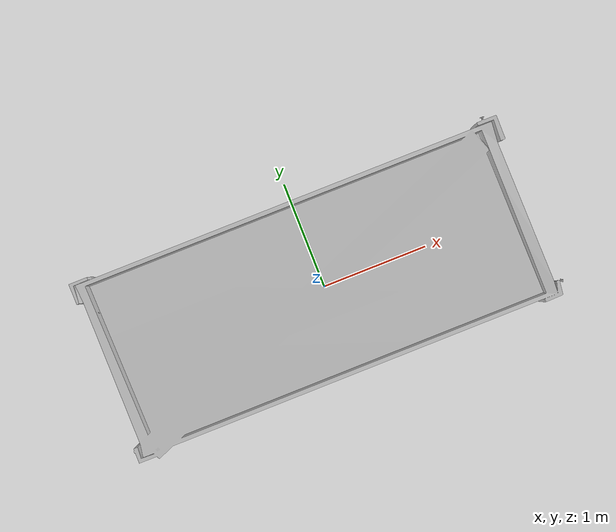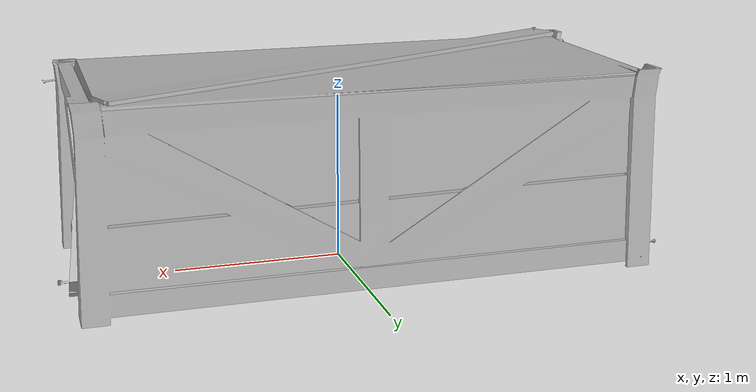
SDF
<sdf version="1.7">
  <model name="barrel_crate">
    <static>true</static>
    <link name="barrel_crate_link">
      <collision name="barrel_crate_collision">
        <geometry>
          <mesh>
            <uri>model://barrel_crate_horizontal/barrel_crate.dae</uri>
            <scale>1 1 1</scale>
          </mesh>
        </geometry>
      </collision>
      <visual name="barrel_crate_visual">
        <geometry>
          <mesh>
            <uri>model://barrel_crate_horizontal/barrel_crate.dae</uri>
            <scale>1 1 1</scale>
          </mesh>
        </geometry>
      </visual>
    </link>
  </model>
</sdf>
